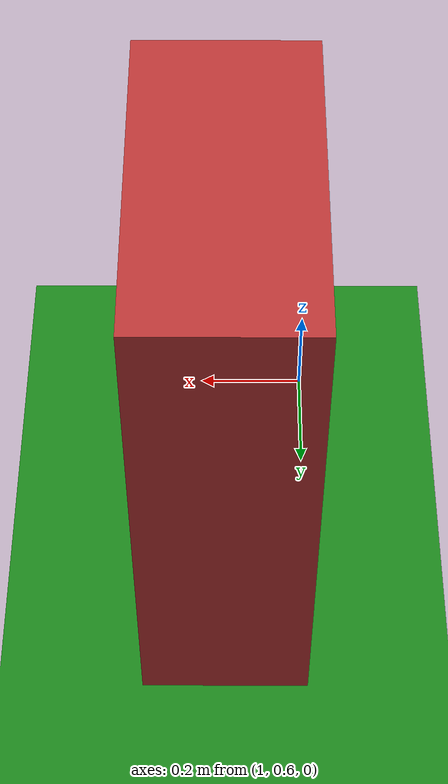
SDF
<?xml version="1.0"?>
<sdf version="1.11">
  <world name="balancing_world">

    <spherical_coordinates>
      <surface_model>EARTH_WGS84</surface_model>
      <world_frame_orientation>ENU</world_frame_orientation>
      <latitude_deg>37.321</latitude_deg>
      <longitude_deg>127.126</longitude_deg>
      <elevation>0</elevation>
      <heading_deg>0</heading_deg>
    </spherical_coordinates>

    <physics name="1ms_physics" type="ignored">
      <max_step_size>0.001</max_step_size>
      <real_time_factor>1.0</real_time_factor>
    </physics>

    <light type="directional" name="sun">
      <cast_shadows>true</cast_shadows>
      <pose>0 0 10 0 0 0</pose>
      <diffuse>0.8 0.8 0.8 1</diffuse>
      <specular>0.2 0.2 0.2 1</specular>
      <attenuation>
        <range>1000</range>
        <constant>0.9</constant>
        <linear>0.01</linear>
        <quadratic>0.001</quadratic>
      </attenuation>
      <direction>-0.5 0.1 -0.9</direction>
    </light>

    <model name="ground_plane">
      <static>true</static>
      <link name="link">
        <collision name="collision">
          <geometry>
            <plane>
              <normal>0 0 1</normal>
              <size>100 100</size>
            </plane>
          </geometry>
          <surface>
            <friction>
              <ode>
                <mu>0.8</mu>
                <mu2>0.8</mu2>
              </ode>
            </friction>
          </surface>
        </collision>
        <visual name="visual">
          <geometry>
            <plane>
              <normal>0 0 1</normal>
              <size>100 100</size>
            </plane>
          </geometry>
          <material>
            <ambient>0.1 0.5 0.1 1</ambient>
            <diffuse>0.1 0.5 0.1 1</diffuse>
          </material>
        </visual>
      </link>
    </model>

    <model name="lidar_test_box">
      <static>true</static>

     <pose>1.15 1.0 0.5 0 0 0</pose>

      <link name="link">

        <collision name="collision">
          <geometry>
            <box>
              <size>0.3 0.6 1.0</size>
            </box>
          </geometry>
        </collision>

        <visual name="visual">
          <geometry>
            <box>
              <size>0.3 0.6 1.0</size>
            </box>
          </geometry>

          <material>
            <ambient>0.7 0.2 0.2 1</ambient>
            <diffuse>0.7 0.2 0.2 1</diffuse>
          </material>
        </visual>

      </link>
    </model>

    <plugin
      filename="gz-sim-physics-system"
      name="gz::sim::systems::Physics">
    </plugin>

    <plugin
      filename="gz-sim-user-commands-system"
      name="gz::sim::systems::UserCommands">
    </plugin>

    <plugin
      filename="gz-sim-scene-broadcaster-system"
      name="gz::sim::systems::SceneBroadcaster">
    </plugin>

    <plugin
      filename="gz-sim-sensors-system"
      name="gz::sim::systems::Sensors">
      <render_engine>ogre2</render_engine>
    </plugin>

    <plugin
      filename="gz-sim-imu-system"
      name="gz::sim::systems::Imu">
    </plugin>

    <plugin
      filename="gz-sim-navsat-system"
      name="gz::sim::systems::NavSat">
    </plugin>

  </world>
</sdf>
